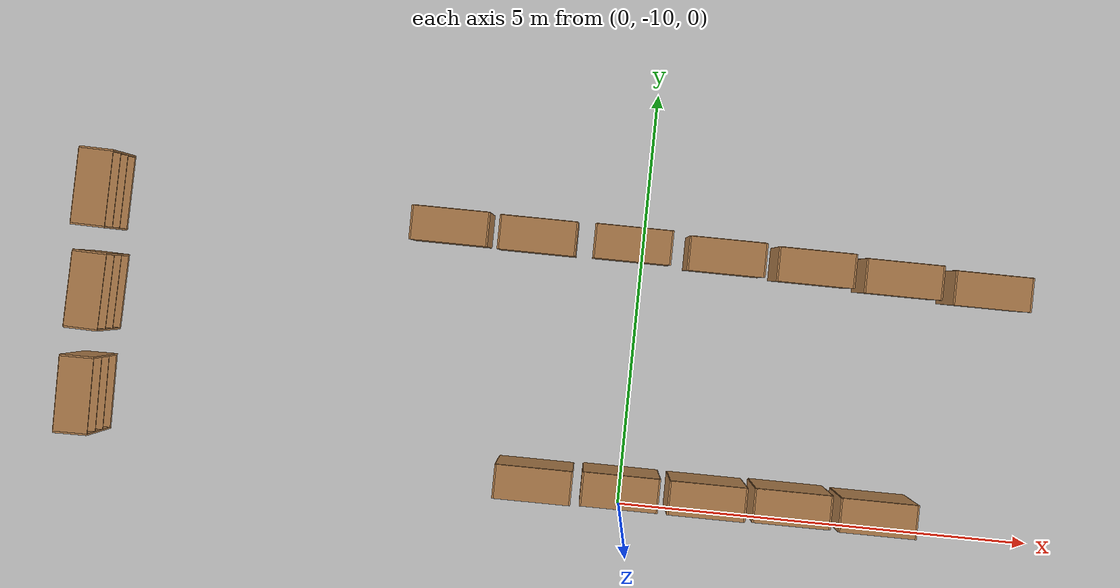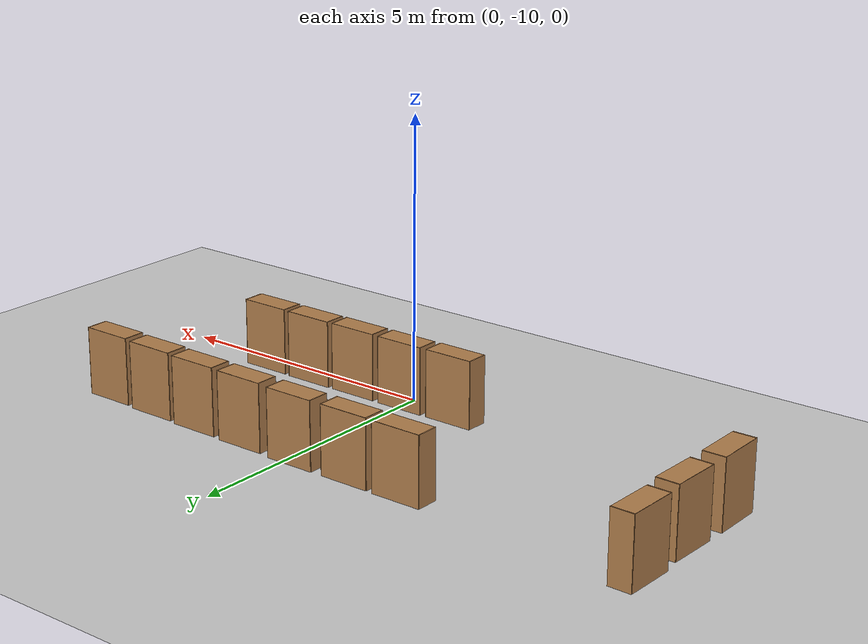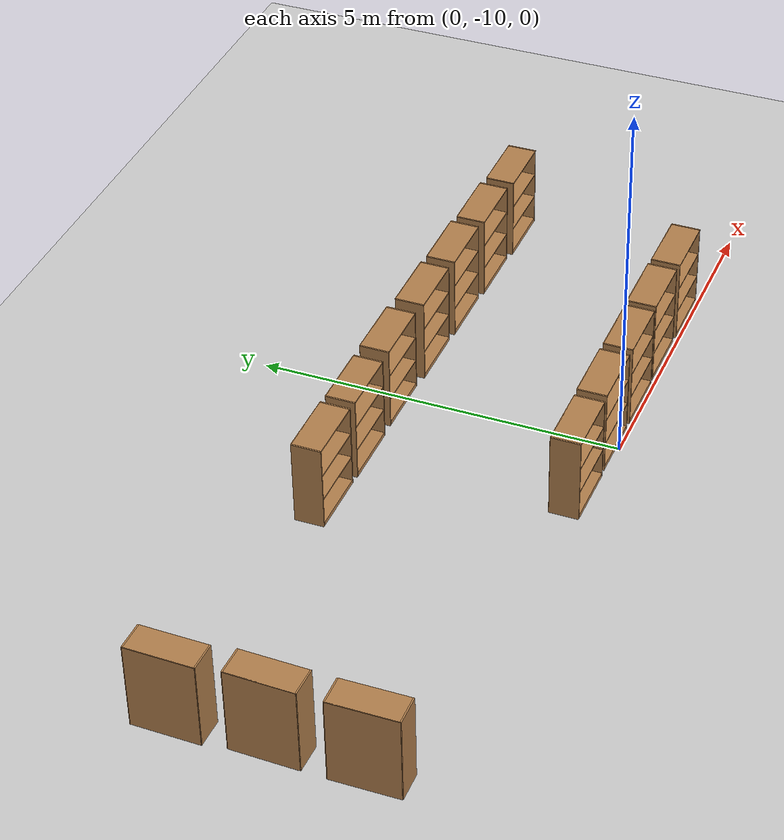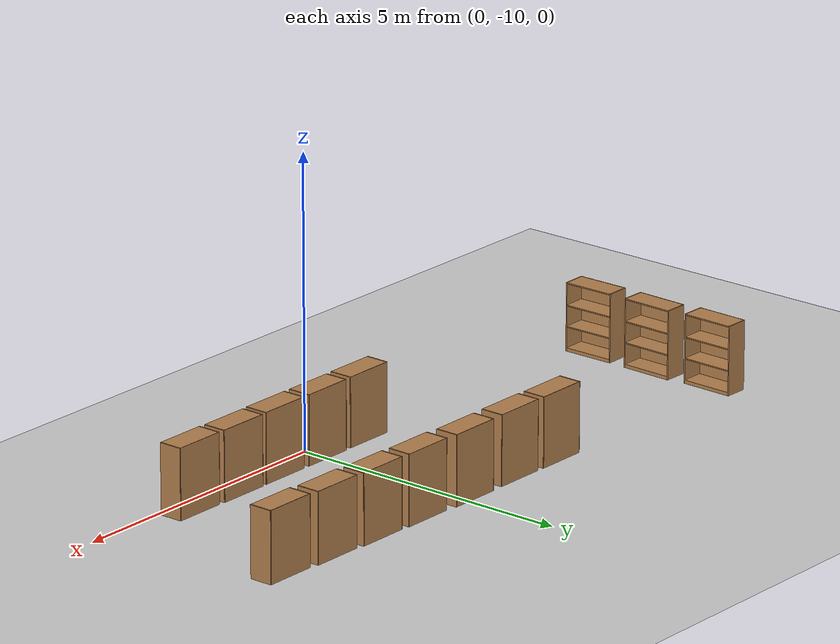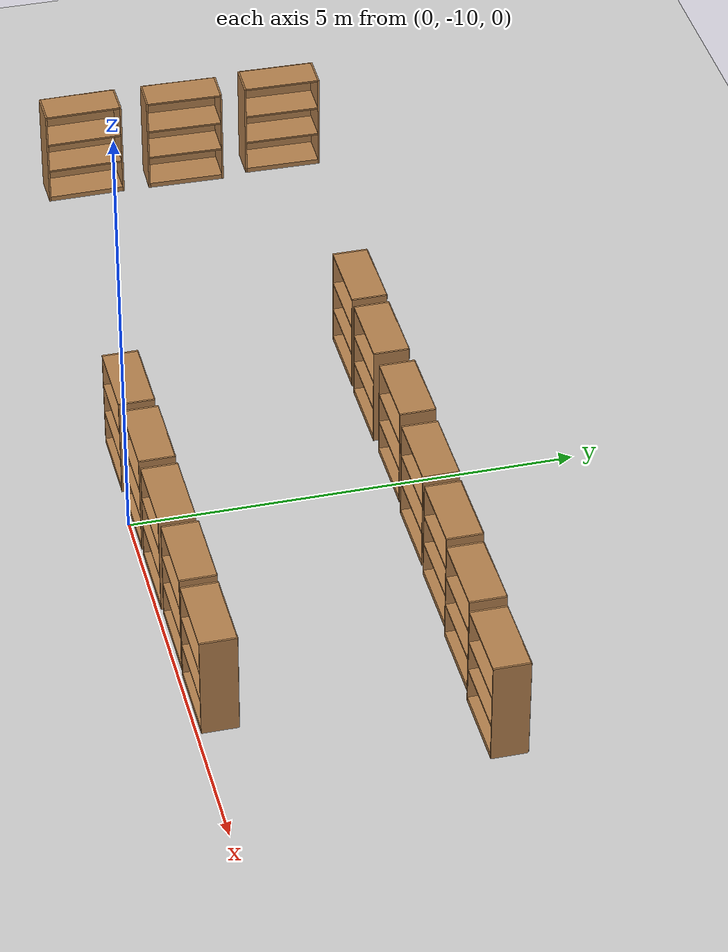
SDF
<sdf version="1.6">
 <world name="default">
  <model name="ground_plane">
   <static>1</static>
   <link name="link">
    <collision name="collision">
     <geometry><plane><normal>0 0 1</normal><size>100 100</size></plane></geometry>
     <surface>
      <contact><collide_bitmask>65535</collide_bitmask></contact>
      <friction><ode><mu>100</mu><mu2>50</mu2></ode></friction>
     </surface>
    </collision>
    <visual name="visual">
     <cast_shadows>0</cast_shadows>
     <geometry><plane><normal>0 0 1</normal><size>100 100</size></plane></geometry>
     <material>
      <script><uri>file://media/materials/scripts/gazebo.material</uri><name>Gazebo/Grey</name></script>
     </material>
    </visual>
   </link>
  </model>
  <model name="bookshelf">
   <static>1</static>
   <link name="link">
    <inertial><mass>1</mass></inertial>
    <collision name="back">
     <pose>0 0.005 0.6 0 -0 0</pose>
     <geometry><box><size>0.9 0.01 1.2</size></box></geometry>
    </collision>
    <visual name="visual1">
     <pose>0 0.005 0.6 0 -0 0</pose>
     <geometry><box><size>0.9 0.01 1.2</size></box></geometry>
     <material>
      <script><uri>file://media/materials/scripts/gazebo.material</uri><name>Gazebo/Wood</name></script>
     </material>
    </visual>
    <collision name="left_side">
     <pose>0.45 -0.195 0.6 0 -0 0</pose>
     <geometry><box><size>0.02 0.4 1.2</size></box></geometry>
    </collision>
    <visual name="visual2">
     <pose>0.45 -0.195 0.6 0 -0 0</pose>
     <geometry><box><size>0.02 0.4 1.2</size></box></geometry>
     <material>
      <script><uri>file://media/materials/scripts/gazebo.material</uri><name>Gazebo/Wood</name></script>
     </material>
    </visual>
    <collision name="right_side">
     <pose>-0.45 -0.195 0.6 0 -0 0</pose>
     <geometry><box><size>0.02 0.4 1.2</size></box></geometry>
    </collision>
    <visual name="visual3">
     <pose>-0.45 -0.195 0.6 0 -0 0</pose>
     <geometry><box><size>0.02 0.4 1.2</size></box></geometry>
     <material>
      <script><uri>file://media/materials/scripts/gazebo.material</uri><name>Gazebo/Wood</name></script>
     </material>
    </visual>
    <collision name="bottom">
     <pose>0 -0.195 0.03 0 -0 0</pose>
     <geometry><box><size>0.88 0.4 0.06</size></box></geometry>
    </collision>
    <visual name="visual4">
     <pose>0 -0.195 0.03 0 -0 0</pose>
     <geometry><box><size>0.88 0.4 0.06</size></box></geometry>
     <material>
      <script><uri>file://media/materials/scripts/gazebo.material</uri><name>Gazebo/Wood</name></script>
     </material>
    </visual>
    <collision name="top">
     <pose>0 -0.195 1.19 0 -0 0</pose>
     <geometry><box><size>0.88 0.4 0.02</size></box></geometry>
    </collision>
    <visual name="visual5">
     <pose>0 -0.195 1.19 0 -0 0</pose>
     <geometry><box><size>0.88 0.4 0.02</size></box></geometry>
     <material>
      <script><uri>file://media/materials/scripts/gazebo.material</uri><name>Gazebo/Wood</name></script>
     </material>
    </visual>
    <collision name="low_shelf">
     <pose>0 -0.195 0.43 0 -0 0</pose>
     <geometry><box><size>0.88 0.4 0.02</size></box></geometry>
    </collision>
    <visual name="visual6">
     <pose>0 -0.195 0.43 0 -0 0</pose>
     <geometry><box><size>0.88 0.4 0.02</size></box></geometry>
     <material>
      <script><uri>file://media/materials/scripts/gazebo.material</uri><name>Gazebo/Wood</name></script>
     </material>
    </visual>
    <collision name="high_shelf">
     <pose>0 -0.195 0.8 0 -0 0</pose>
     <geometry><box><size>0.88 0.4 0.02</size></box></geometry>
    </collision>
    <visual name="visual7">
     <pose>0 -0.195 0.8 0 -0 0</pose>
     <geometry><box><size>0.88 0.4 0.02</size></box></geometry>
     <material>
      <script><uri>file://media/materials/scripts/gazebo.material</uri><name>Gazebo/Wood</name></script>
     </material>
    </visual>
   </link>
   <pose>-1.04196 -9.56477 0 0 -0 0</pose>
  </model>
  <model name="bookshelf_clone">
   <static>1</static>
   <link name="link">
    <inertial><mass>1</mass></inertial>
    <collision name="back">
     <pose>0 0.005 0.6 0 -0 0</pose>
     <geometry><box><size>0.9 0.01 1.2</size></box></geometry>
    </collision>
    <visual name="visual1">
     <pose>0 0.005 0.6 0 -0 0</pose>
     <geometry><box><size>0.9 0.01 1.2</size></box></geometry>
     <material>
      <script><uri>file://media/materials/scripts/gazebo.material</uri><name>Gazebo/Wood</name></script>
     </material>
    </visual>
    <collision name="left_side">
     <pose>0.45 -0.195 0.6 0 -0 0</pose>
     <geometry><box><size>0.02 0.4 1.2</size></box></geometry>
    </collision>
    <visual name="visual2">
     <pose>0.45 -0.195 0.6 0 -0 0</pose>
     <geometry><box><size>0.02 0.4 1.2</size></box></geometry>
     <material>
      <script><uri>file://media/materials/scripts/gazebo.material</uri><name>Gazebo/Wood</name></script>
     </material>
    </visual>
    <collision name="right_side">
     <pose>-0.45 -0.195 0.6 0 -0 0</pose>
     <geometry><box><size>0.02 0.4 1.2</size></box></geometry>
    </collision>
    <visual name="visual3">
     <pose>-0.45 -0.195 0.6 0 -0 0</pose>
     <geometry><box><size>0.02 0.4 1.2</size></box></geometry>
     <material>
      <script><uri>file://media/materials/scripts/gazebo.material</uri><name>Gazebo/Wood</name></script>
     </material>
    </visual>
    <collision name="bottom">
     <pose>0 -0.195 0.03 0 -0 0</pose>
     <geometry><box><size>0.88 0.4 0.06</size></box></geometry>
    </collision>
    <visual name="visual4">
     <pose>0 -0.195 0.03 0 -0 0</pose>
     <geometry><box><size>0.88 0.4 0.06</size></box></geometry>
     <material>
      <script><uri>file://media/materials/scripts/gazebo.material</uri><name>Gazebo/Wood</name></script>
     </material>
    </visual>
    <collision name="top">
     <pose>0 -0.195 1.19 0 -0 0</pose>
     <geometry><box><size>0.88 0.4 0.02</size></box></geometry>
    </collision>
    <visual name="visual5">
     <pose>0 -0.195 1.19 0 -0 0</pose>
     <geometry><box><size>0.88 0.4 0.02</size></box></geometry>
     <material>
      <script><uri>file://media/materials/scripts/gazebo.material</uri><name>Gazebo/Wood</name></script>
     </material>
    </visual>
    <collision name="low_shelf">
     <pose>0 -0.195 0.43 0 -0 0</pose>
     <geometry><box><size>0.88 0.4 0.02</size></box></geometry>
    </collision>
    <visual name="visual6">
     <pose>0 -0.195 0.43 0 -0 0</pose>
     <geometry><box><size>0.88 0.4 0.02</size></box></geometry>
     <material>
      <script><uri>file://media/materials/scripts/gazebo.material</uri><name>Gazebo/Wood</name></script>
     </material>
    </visual>
    <collision name="high_shelf">
     <pose>0 -0.195 0.8 0 -0 0</pose>
     <geometry><box><size>0.88 0.4 0.02</size></box></geometry>
    </collision>
    <visual name="visual7">
     <pose>0 -0.195 0.8 0 -0 0</pose>
     <geometry><box><size>0.88 0.4 0.02</size></box></geometry>
     <material>
      <script><uri>file://media/materials/scripts/gazebo.material</uri><name>Gazebo/Wood</name></script>
     </material>
    </visual>
   </link>
   <pose>-0.018383 -9.55291 0 0 -0 0</pose>
  </model>
  <model name="bookshelf_clone_0">
   <static>1</static>
   <link name="link">
    <inertial><mass>1</mass></inertial>
    <collision name="back">
     <pose>0 0.005 0.6 0 -0 0</pose>
     <geometry><box><size>0.9 0.01 1.2</size></box></geometry>
    </collision>
    <visual name="visual1">
     <pose>0 0.005 0.6 0 -0 0</pose>
     <geometry><box><size>0.9 0.01 1.2</size></box></geometry>
     <material>
      <script><uri>file://media/materials/scripts/gazebo.material</uri><name>Gazebo/Wood</name></script>
     </material>
    </visual>
    <collision name="left_side">
     <pose>0.45 -0.195 0.6 0 -0 0</pose>
     <geometry><box><size>0.02 0.4 1.2</size></box></geometry>
    </collision>
    <visual name="visual2">
     <pose>0.45 -0.195 0.6 0 -0 0</pose>
     <geometry><box><size>0.02 0.4 1.2</size></box></geometry>
     <material>
      <script><uri>file://media/materials/scripts/gazebo.material</uri><name>Gazebo/Wood</name></script>
     </material>
    </visual>
    <collision name="right_side">
     <pose>-0.45 -0.195 0.6 0 -0 0</pose>
     <geometry><box><size>0.02 0.4 1.2</size></box></geometry>
    </collision>
    <visual name="visual3">
     <pose>-0.45 -0.195 0.6 0 -0 0</pose>
     <geometry><box><size>0.02 0.4 1.2</size></box></geometry>
     <material>
      <script><uri>file://media/materials/scripts/gazebo.material</uri><name>Gazebo/Wood</name></script>
     </material>
    </visual>
    <collision name="bottom">
     <pose>0 -0.195 0.03 0 -0 0</pose>
     <geometry><box><size>0.88 0.4 0.06</size></box></geometry>
    </collision>
    <visual name="visual4">
     <pose>0 -0.195 0.03 0 -0 0</pose>
     <geometry><box><size>0.88 0.4 0.06</size></box></geometry>
     <material>
      <script><uri>file://media/materials/scripts/gazebo.material</uri><name>Gazebo/Wood</name></script>
     </material>
    </visual>
    <collision name="top">
     <pose>0 -0.195 1.19 0 -0 0</pose>
     <geometry><box><size>0.88 0.4 0.02</size></box></geometry>
    </collision>
    <visual name="visual5">
     <pose>0 -0.195 1.19 0 -0 0</pose>
     <geometry><box><size>0.88 0.4 0.02</size></box></geometry>
     <material>
      <script><uri>file://media/materials/scripts/gazebo.material</uri><name>Gazebo/Wood</name></script>
     </material>
    </visual>
    <collision name="low_shelf">
     <pose>0 -0.195 0.43 0 -0 0</pose>
     <geometry><box><size>0.88 0.4 0.02</size></box></geometry>
    </collision>
    <visual name="visual6">
     <pose>0 -0.195 0.43 0 -0 0</pose>
     <geometry><box><size>0.88 0.4 0.02</size></box></geometry>
     <material>
      <script><uri>file://media/materials/scripts/gazebo.material</uri><name>Gazebo/Wood</name></script>
     </material>
    </visual>
    <collision name="high_shelf">
     <pose>0 -0.195 0.8 0 -0 0</pose>
     <geometry><box><size>0.88 0.4 0.02</size></box></geometry>
    </collision>
    <visual name="visual7">
     <pose>0 -0.195 0.8 0 -0 0</pose>
     <geometry><box><size>0.88 0.4 0.02</size></box></geometry>
     <material>
      <script><uri>file://media/materials/scripts/gazebo.material</uri><name>Gazebo/Wood</name></script>
     </material>
    </visual>
   </link>
   <pose>1.00551 -9.55613 0 0 -0 0</pose>
  </model>
  <model name="bookshelf_clone_1">
   <static>1</static>
   <link name="link">
    <inertial><mass>1</mass></inertial>
    <collision name="back">
     <pose>0 0.005 0.6 0 -0 0</pose>
     <geometry><box><size>0.9 0.01 1.2</size></box></geometry>
    </collision>
    <visual name="visual1">
     <pose>0 0.005 0.6 0 -0 0</pose>
     <geometry><box><size>0.9 0.01 1.2</size></box></geometry>
     <material>
      <script><uri>file://media/materials/scripts/gazebo.material</uri><name>Gazebo/Wood</name></script>
     </material>
    </visual>
    <collision name="left_side">
     <pose>0.45 -0.195 0.6 0 -0 0</pose>
     <geometry><box><size>0.02 0.4 1.2</size></box></geometry>
    </collision>
    <visual name="visual2">
     <pose>0.45 -0.195 0.6 0 -0 0</pose>
     <geometry><box><size>0.02 0.4 1.2</size></box></geometry>
     <material>
      <script><uri>file://media/materials/scripts/gazebo.material</uri><name>Gazebo/Wood</name></script>
     </material>
    </visual>
    <collision name="right_side">
     <pose>-0.45 -0.195 0.6 0 -0 0</pose>
     <geometry><box><size>0.02 0.4 1.2</size></box></geometry>
    </collision>
    <visual name="visual3">
     <pose>-0.45 -0.195 0.6 0 -0 0</pose>
     <geometry><box><size>0.02 0.4 1.2</size></box></geometry>
     <material>
      <script><uri>file://media/materials/scripts/gazebo.material</uri><name>Gazebo/Wood</name></script>
     </material>
    </visual>
    <collision name="bottom">
     <pose>0 -0.195 0.03 0 -0 0</pose>
     <geometry><box><size>0.88 0.4 0.06</size></box></geometry>
    </collision>
    <visual name="visual4">
     <pose>0 -0.195 0.03 0 -0 0</pose>
     <geometry><box><size>0.88 0.4 0.06</size></box></geometry>
     <material>
      <script><uri>file://media/materials/scripts/gazebo.material</uri><name>Gazebo/Wood</name></script>
     </material>
    </visual>
    <collision name="top">
     <pose>0 -0.195 1.19 0 -0 0</pose>
     <geometry><box><size>0.88 0.4 0.02</size></box></geometry>
    </collision>
    <visual name="visual5">
     <pose>0 -0.195 1.19 0 -0 0</pose>
     <geometry><box><size>0.88 0.4 0.02</size></box></geometry>
     <material>
      <script><uri>file://media/materials/scripts/gazebo.material</uri><name>Gazebo/Wood</name></script>
     </material>
    </visual>
    <collision name="low_shelf">
     <pose>0 -0.195 0.43 0 -0 0</pose>
     <geometry><box><size>0.88 0.4 0.02</size></box></geometry>
    </collision>
    <visual name="visual6">
     <pose>0 -0.195 0.43 0 -0 0</pose>
     <geometry><box><size>0.88 0.4 0.02</size></box></geometry>
     <material>
      <script><uri>file://media/materials/scripts/gazebo.material</uri><name>Gazebo/Wood</name></script>
     </material>
    </visual>
    <collision name="high_shelf">
     <pose>0 -0.195 0.8 0 -0 0</pose>
     <geometry><box><size>0.88 0.4 0.02</size></box></geometry>
    </collision>
    <visual name="visual7">
     <pose>0 -0.195 0.8 0 -0 0</pose>
     <geometry><box><size>0.88 0.4 0.02</size></box></geometry>
     <material>
      <script><uri>file://media/materials/scripts/gazebo.material</uri><name>Gazebo/Wood</name></script>
     </material>
    </visual>
   </link>
   <pose>2.0034 -9.54641 0 0 -0 0</pose>
  </model>
  <model name="bookshelf_clone_2">
   <static>1</static>
   <link name="link">
    <inertial><mass>1</mass></inertial>
    <collision name="back">
     <pose>0 0.005 0.6 0 -0 0</pose>
     <geometry><box><size>0.9 0.01 1.2</size></box></geometry>
    </collision>
    <visual name="visual1">
     <pose>0 0.005 0.6 0 -0 0</pose>
     <geometry><box><size>0.9 0.01 1.2</size></box></geometry>
     <material>
      <script><uri>file://media/materials/scripts/gazebo.material</uri><name>Gazebo/Wood</name></script>
     </material>
    </visual>
    <collision name="left_side">
     <pose>0.45 -0.195 0.6 0 -0 0</pose>
     <geometry><box><size>0.02 0.4 1.2</size></box></geometry>
    </collision>
    <visual name="visual2">
     <pose>0.45 -0.195 0.6 0 -0 0</pose>
     <geometry><box><size>0.02 0.4 1.2</size></box></geometry>
     <material>
      <script><uri>file://media/materials/scripts/gazebo.material</uri><name>Gazebo/Wood</name></script>
     </material>
    </visual>
    <collision name="right_side">
     <pose>-0.45 -0.195 0.6 0 -0 0</pose>
     <geometry><box><size>0.02 0.4 1.2</size></box></geometry>
    </collision>
    <visual name="visual3">
     <pose>-0.45 -0.195 0.6 0 -0 0</pose>
     <geometry><box><size>0.02 0.4 1.2</size></box></geometry>
     <material>
      <script><uri>file://media/materials/scripts/gazebo.material</uri><name>Gazebo/Wood</name></script>
     </material>
    </visual>
    <collision name="bottom">
     <pose>0 -0.195 0.03 0 -0 0</pose>
     <geometry><box><size>0.88 0.4 0.06</size></box></geometry>
    </collision>
    <visual name="visual4">
     <pose>0 -0.195 0.03 0 -0 0</pose>
     <geometry><box><size>0.88 0.4 0.06</size></box></geometry>
     <material>
      <script><uri>file://media/materials/scripts/gazebo.material</uri><name>Gazebo/Wood</name></script>
     </material>
    </visual>
    <collision name="top">
     <pose>0 -0.195 1.19 0 -0 0</pose>
     <geometry><box><size>0.88 0.4 0.02</size></box></geometry>
    </collision>
    <visual name="visual5">
     <pose>0 -0.195 1.19 0 -0 0</pose>
     <geometry><box><size>0.88 0.4 0.02</size></box></geometry>
     <material>
      <script><uri>file://media/materials/scripts/gazebo.material</uri><name>Gazebo/Wood</name></script>
     </material>
    </visual>
    <collision name="low_shelf">
     <pose>0 -0.195 0.43 0 -0 0</pose>
     <geometry><box><size>0.88 0.4 0.02</size></box></geometry>
    </collision>
    <visual name="visual6">
     <pose>0 -0.195 0.43 0 -0 0</pose>
     <geometry><box><size>0.88 0.4 0.02</size></box></geometry>
     <material>
      <script><uri>file://media/materials/scripts/gazebo.material</uri><name>Gazebo/Wood</name></script>
     </material>
    </visual>
    <collision name="high_shelf">
     <pose>0 -0.195 0.8 0 -0 0</pose>
     <geometry><box><size>0.88 0.4 0.02</size></box></geometry>
    </collision>
    <visual name="visual7">
     <pose>0 -0.195 0.8 0 -0 0</pose>
     <geometry><box><size>0.88 0.4 0.02</size></box></geometry>
     <material>
      <script><uri>file://media/materials/scripts/gazebo.material</uri><name>Gazebo/Wood</name></script>
     </material>
    </visual>
   </link>
   <pose>3.01253 -9.55844 0 0 -0 0</pose>
  </model>
  <model name="bookshelf_clone_4">
   <static>1</static>
   <link name="link">
    <inertial><mass>1</mass></inertial>
    <collision name="back">
     <pose>0 0.005 0.6 0 -0 0</pose>
     <geometry><box><size>0.9 0.01 1.2</size></box></geometry>
    </collision>
    <visual name="visual1">
     <pose>0 0.005 0.6 0 -0 0</pose>
     <geometry><box><size>0.9 0.01 1.2</size></box></geometry>
     <material>
      <script><uri>file://media/materials/scripts/gazebo.material</uri><name>Gazebo/Wood</name></script>
     </material>
    </visual>
    <collision name="left_side">
     <pose>0.45 -0.195 0.6 0 -0 0</pose>
     <geometry><box><size>0.02 0.4 1.2</size></box></geometry>
    </collision>
    <visual name="visual2">
     <pose>0.45 -0.195 0.6 0 -0 0</pose>
     <geometry><box><size>0.02 0.4 1.2</size></box></geometry>
     <material>
      <script><uri>file://media/materials/scripts/gazebo.material</uri><name>Gazebo/Wood</name></script>
     </material>
    </visual>
    <collision name="right_side">
     <pose>-0.45 -0.195 0.6 0 -0 0</pose>
     <geometry><box><size>0.02 0.4 1.2</size></box></geometry>
    </collision>
    <visual name="visual3">
     <pose>-0.45 -0.195 0.6 0 -0 0</pose>
     <geometry><box><size>0.02 0.4 1.2</size></box></geometry>
     <material>
      <script><uri>file://media/materials/scripts/gazebo.material</uri><name>Gazebo/Wood</name></script>
     </material>
    </visual>
    <collision name="bottom">
     <pose>0 -0.195 0.03 0 -0 0</pose>
     <geometry><box><size>0.88 0.4 0.06</size></box></geometry>
    </collision>
    <visual name="visual4">
     <pose>0 -0.195 0.03 0 -0 0</pose>
     <geometry><box><size>0.88 0.4 0.06</size></box></geometry>
     <material>
      <script><uri>file://media/materials/scripts/gazebo.material</uri><name>Gazebo/Wood</name></script>
     </material>
    </visual>
    <collision name="top">
     <pose>0 -0.195 1.19 0 -0 0</pose>
     <geometry><box><size>0.88 0.4 0.02</size></box></geometry>
    </collision>
    <visual name="visual5">
     <pose>0 -0.195 1.19 0 -0 0</pose>
     <geometry><box><size>0.88 0.4 0.02</size></box></geometry>
     <material>
      <script><uri>file://media/materials/scripts/gazebo.material</uri><name>Gazebo/Wood</name></script>
     </material>
    </visual>
    <collision name="low_shelf">
     <pose>0 -0.195 0.43 0 -0 0</pose>
     <geometry><box><size>0.88 0.4 0.02</size></box></geometry>
    </collision>
    <visual name="visual6">
     <pose>0 -0.195 0.43 0 -0 0</pose>
     <geometry><box><size>0.88 0.4 0.02</size></box></geometry>
     <material>
      <script><uri>file://media/materials/scripts/gazebo.material</uri><name>Gazebo/Wood</name></script>
     </material>
    </visual>
    <collision name="high_shelf">
     <pose>0 -0.195 0.8 0 -0 0</pose>
     <geometry><box><size>0.88 0.4 0.02</size></box></geometry>
    </collision>
    <visual name="visual7">
     <pose>0 -0.195 0.8 0 -0 0</pose>
     <geometry><box><size>0.88 0.4 0.02</size></box></geometry>
     <material>
      <script><uri>file://media/materials/scripts/gazebo.material</uri><name>Gazebo/Wood</name></script>
     </material>
    </visual>
   </link>
   <pose>-1.26677 -6.66712 0 0 -0 0</pose>
  </model>
  <model name="bookshelf_clone_5">
   <static>1</static>
   <link name="link">
    <inertial><mass>1</mass></inertial>
    <collision name="back">
     <pose>0 0.005 0.6 0 -0 0</pose>
     <geometry><box><size>0.9 0.01 1.2</size></box></geometry>
    </collision>
    <visual name="visual1">
     <pose>0 0.005 0.6 0 -0 0</pose>
     <geometry><box><size>0.9 0.01 1.2</size></box></geometry>
     <material>
      <script><uri>file://media/materials/scripts/gazebo.material</uri><name>Gazebo/Wood</name></script>
     </material>
    </visual>
    <collision name="left_side">
     <pose>0.45 -0.195 0.6 0 -0 0</pose>
     <geometry><box><size>0.02 0.4 1.2</size></box></geometry>
    </collision>
    <visual name="visual2">
     <pose>0.45 -0.195 0.6 0 -0 0</pose>
     <geometry><box><size>0.02 0.4 1.2</size></box></geometry>
     <material>
      <script><uri>file://media/materials/scripts/gazebo.material</uri><name>Gazebo/Wood</name></script>
     </material>
    </visual>
    <collision name="right_side">
     <pose>-0.45 -0.195 0.6 0 -0 0</pose>
     <geometry><box><size>0.02 0.4 1.2</size></box></geometry>
    </collision>
    <visual name="visual3">
     <pose>-0.45 -0.195 0.6 0 -0 0</pose>
     <geometry><box><size>0.02 0.4 1.2</size></box></geometry>
     <material>
      <script><uri>file://media/materials/scripts/gazebo.material</uri><name>Gazebo/Wood</name></script>
     </material>
    </visual>
    <collision name="bottom">
     <pose>0 -0.195 0.03 0 -0 0</pose>
     <geometry><box><size>0.88 0.4 0.06</size></box></geometry>
    </collision>
    <visual name="visual4">
     <pose>0 -0.195 0.03 0 -0 0</pose>
     <geometry><box><size>0.88 0.4 0.06</size></box></geometry>
     <material>
      <script><uri>file://media/materials/scripts/gazebo.material</uri><name>Gazebo/Wood</name></script>
     </material>
    </visual>
    <collision name="top">
     <pose>0 -0.195 1.19 0 -0 0</pose>
     <geometry><box><size>0.88 0.4 0.02</size></box></geometry>
    </collision>
    <visual name="visual5">
     <pose>0 -0.195 1.19 0 -0 0</pose>
     <geometry><box><size>0.88 0.4 0.02</size></box></geometry>
     <material>
      <script><uri>file://media/materials/scripts/gazebo.material</uri><name>Gazebo/Wood</name></script>
     </material>
    </visual>
    <collision name="low_shelf">
     <pose>0 -0.195 0.43 0 -0 0</pose>
     <geometry><box><size>0.88 0.4 0.02</size></box></geometry>
    </collision>
    <visual name="visual6">
     <pose>0 -0.195 0.43 0 -0 0</pose>
     <geometry><box><size>0.88 0.4 0.02</size></box></geometry>
     <material>
      <script><uri>file://media/materials/scripts/gazebo.material</uri><name>Gazebo/Wood</name></script>
     </material>
    </visual>
    <collision name="high_shelf">
     <pose>0 -0.195 0.8 0 -0 0</pose>
     <geometry><box><size>0.88 0.4 0.02</size></box></geometry>
    </collision>
    <visual name="visual7">
     <pose>0 -0.195 0.8 0 -0 0</pose>
     <geometry><box><size>0.88 0.4 0.02</size></box></geometry>
     <material>
      <script><uri>file://media/materials/scripts/gazebo.material</uri><name>Gazebo/Wood</name></script>
     </material>
    </visual>
   </link>
   <pose>-0.148558 -6.65978 0 0 -0 0</pose>
  </model>
  <model name="bookshelf_clone_6">
   <static>1</static>
   <link name="link">
    <inertial><mass>1</mass></inertial>
    <collision name="back">
     <pose>0 0.005 0.6 0 -0 0</pose>
     <geometry><box><size>0.9 0.01 1.2</size></box></geometry>
    </collision>
    <visual name="visual1">
     <pose>0 0.005 0.6 0 -0 0</pose>
     <geometry><box><size>0.9 0.01 1.2</size></box></geometry>
     <material>
      <script><uri>file://media/materials/scripts/gazebo.material</uri><name>Gazebo/Wood</name></script>
     </material>
    </visual>
    <collision name="left_side">
     <pose>0.45 -0.195 0.6 0 -0 0</pose>
     <geometry><box><size>0.02 0.4 1.2</size></box></geometry>
    </collision>
    <visual name="visual2">
     <pose>0.45 -0.195 0.6 0 -0 0</pose>
     <geometry><box><size>0.02 0.4 1.2</size></box></geometry>
     <material>
      <script><uri>file://media/materials/scripts/gazebo.material</uri><name>Gazebo/Wood</name></script>
     </material>
    </visual>
    <collision name="right_side">
     <pose>-0.45 -0.195 0.6 0 -0 0</pose>
     <geometry><box><size>0.02 0.4 1.2</size></box></geometry>
    </collision>
    <visual name="visual3">
     <pose>-0.45 -0.195 0.6 0 -0 0</pose>
     <geometry><box><size>0.02 0.4 1.2</size></box></geometry>
     <material>
      <script><uri>file://media/materials/scripts/gazebo.material</uri><name>Gazebo/Wood</name></script>
     </material>
    </visual>
    <collision name="bottom">
     <pose>0 -0.195 0.03 0 -0 0</pose>
     <geometry><box><size>0.88 0.4 0.06</size></box></geometry>
    </collision>
    <visual name="visual4">
     <pose>0 -0.195 0.03 0 -0 0</pose>
     <geometry><box><size>0.88 0.4 0.06</size></box></geometry>
     <material>
      <script><uri>file://media/materials/scripts/gazebo.material</uri><name>Gazebo/Wood</name></script>
     </material>
    </visual>
    <collision name="top">
     <pose>0 -0.195 1.19 0 -0 0</pose>
     <geometry><box><size>0.88 0.4 0.02</size></box></geometry>
    </collision>
    <visual name="visual5">
     <pose>0 -0.195 1.19 0 -0 0</pose>
     <geometry><box><size>0.88 0.4 0.02</size></box></geometry>
     <material>
      <script><uri>file://media/materials/scripts/gazebo.material</uri><name>Gazebo/Wood</name></script>
     </material>
    </visual>
    <collision name="low_shelf">
     <pose>0 -0.195 0.43 0 -0 0</pose>
     <geometry><box><size>0.88 0.4 0.02</size></box></geometry>
    </collision>
    <visual name="visual6">
     <pose>0 -0.195 0.43 0 -0 0</pose>
     <geometry><box><size>0.88 0.4 0.02</size></box></geometry>
     <material>
      <script><uri>file://media/materials/scripts/gazebo.material</uri><name>Gazebo/Wood</name></script>
     </material>
    </visual>
    <collision name="high_shelf">
     <pose>0 -0.195 0.8 0 -0 0</pose>
     <geometry><box><size>0.88 0.4 0.02</size></box></geometry>
    </collision>
    <visual name="visual7">
     <pose>0 -0.195 0.8 0 -0 0</pose>
     <geometry><box><size>0.88 0.4 0.02</size></box></geometry>
     <material>
      <script><uri>file://media/materials/scripts/gazebo.material</uri><name>Gazebo/Wood</name></script>
     </material>
    </visual>
   </link>
   <pose>0.958237 -6.69543 0 0 -0 0</pose>
  </model>
  <model name="bookshelf_clone_7">
   <static>1</static>
   <link name="link">
    <inertial><mass>1</mass></inertial>
    <collision name="back">
     <pose>0 0.005 0.6 0 -0 0</pose>
     <geometry><box><size>0.9 0.01 1.2</size></box></geometry>
    </collision>
    <visual name="visual1">
     <pose>0 0.005 0.6 0 -0 0</pose>
     <geometry><box><size>0.9 0.01 1.2</size></box></geometry>
     <material>
      <script><uri>file://media/materials/scripts/gazebo.material</uri><name>Gazebo/Wood</name></script>
     </material>
    </visual>
    <collision name="left_side">
     <pose>0.45 -0.195 0.6 0 -0 0</pose>
     <geometry><box><size>0.02 0.4 1.2</size></box></geometry>
    </collision>
    <visual name="visual2">
     <pose>0.45 -0.195 0.6 0 -0 0</pose>
     <geometry><box><size>0.02 0.4 1.2</size></box></geometry>
     <material>
      <script><uri>file://media/materials/scripts/gazebo.material</uri><name>Gazebo/Wood</name></script>
     </material>
    </visual>
    <collision name="right_side">
     <pose>-0.45 -0.195 0.6 0 -0 0</pose>
     <geometry><box><size>0.02 0.4 1.2</size></box></geometry>
    </collision>
    <visual name="visual3">
     <pose>-0.45 -0.195 0.6 0 -0 0</pose>
     <geometry><box><size>0.02 0.4 1.2</size></box></geometry>
     <material>
      <script><uri>file://media/materials/scripts/gazebo.material</uri><name>Gazebo/Wood</name></script>
     </material>
    </visual>
    <collision name="bottom">
     <pose>0 -0.195 0.03 0 -0 0</pose>
     <geometry><box><size>0.88 0.4 0.06</size></box></geometry>
    </collision>
    <visual name="visual4">
     <pose>0 -0.195 0.03 0 -0 0</pose>
     <geometry><box><size>0.88 0.4 0.06</size></box></geometry>
     <material>
      <script><uri>file://media/materials/scripts/gazebo.material</uri><name>Gazebo/Wood</name></script>
     </material>
    </visual>
    <collision name="top">
     <pose>0 -0.195 1.19 0 -0 0</pose>
     <geometry><box><size>0.88 0.4 0.02</size></box></geometry>
    </collision>
    <visual name="visual5">
     <pose>0 -0.195 1.19 0 -0 0</pose>
     <geometry><box><size>0.88 0.4 0.02</size></box></geometry>
     <material>
      <script><uri>file://media/materials/scripts/gazebo.material</uri><name>Gazebo/Wood</name></script>
     </material>
    </visual>
    <collision name="low_shelf">
     <pose>0 -0.195 0.43 0 -0 0</pose>
     <geometry><box><size>0.88 0.4 0.02</size></box></geometry>
    </collision>
    <visual name="visual6">
     <pose>0 -0.195 0.43 0 -0 0</pose>
     <geometry><box><size>0.88 0.4 0.02</size></box></geometry>
     <material>
      <script><uri>file://media/materials/scripts/gazebo.material</uri><name>Gazebo/Wood</name></script>
     </material>
    </visual>
    <collision name="high_shelf">
     <pose>0 -0.195 0.8 0 -0 0</pose>
     <geometry><box><size>0.88 0.4 0.02</size></box></geometry>
    </collision>
    <visual name="visual7">
     <pose>0 -0.195 0.8 0 -0 0</pose>
     <geometry><box><size>0.88 0.4 0.02</size></box></geometry>
     <material>
      <script><uri>file://media/materials/scripts/gazebo.material</uri><name>Gazebo/Wood</name></script>
     </material>
    </visual>
   </link>
   <pose>2.00782 -6.71921 0 0 -0 0</pose>
  </model>
  <model name="bookshelf_clone_8">
   <static>1</static>
   <link name="link">
    <inertial><mass>1</mass></inertial>
    <collision name="back">
     <pose>0 0.005 0.6 0 -0 0</pose>
     <geometry><box><size>0.9 0.01 1.2</size></box></geometry>
    </collision>
    <visual name="visual1">
     <pose>0 0.005 0.6 0 -0 0</pose>
     <geometry><box><size>0.9 0.01 1.2</size></box></geometry>
     <material>
      <script><uri>file://media/materials/scripts/gazebo.material</uri><name>Gazebo/Wood</name></script>
     </material>
    </visual>
    <collision name="left_side">
     <pose>0.45 -0.195 0.6 0 -0 0</pose>
     <geometry><box><size>0.02 0.4 1.2</size></box></geometry>
    </collision>
    <visual name="visual2">
     <pose>0.45 -0.195 0.6 0 -0 0</pose>
     <geometry><box><size>0.02 0.4 1.2</size></box></geometry>
     <material>
      <script><uri>file://media/materials/scripts/gazebo.material</uri><name>Gazebo/Wood</name></script>
     </material>
    </visual>
    <collision name="right_side">
     <pose>-0.45 -0.195 0.6 0 -0 0</pose>
     <geometry><box><size>0.02 0.4 1.2</size></box></geometry>
    </collision>
    <visual name="visual3">
     <pose>-0.45 -0.195 0.6 0 -0 0</pose>
     <geometry><box><size>0.02 0.4 1.2</size></box></geometry>
     <material>
      <script><uri>file://media/materials/scripts/gazebo.material</uri><name>Gazebo/Wood</name></script>
     </material>
    </visual>
    <collision name="bottom">
     <pose>0 -0.195 0.03 0 -0 0</pose>
     <geometry><box><size>0.88 0.4 0.06</size></box></geometry>
    </collision>
    <visual name="visual4">
     <pose>0 -0.195 0.03 0 -0 0</pose>
     <geometry><box><size>0.88 0.4 0.06</size></box></geometry>
     <material>
      <script><uri>file://media/materials/scripts/gazebo.material</uri><name>Gazebo/Wood</name></script>
     </material>
    </visual>
    <collision name="top">
     <pose>0 -0.195 1.19 0 -0 0</pose>
     <geometry><box><size>0.88 0.4 0.02</size></box></geometry>
    </collision>
    <visual name="visual5">
     <pose>0 -0.195 1.19 0 -0 0</pose>
     <geometry><box><size>0.88 0.4 0.02</size></box></geometry>
     <material>
      <script><uri>file://media/materials/scripts/gazebo.material</uri><name>Gazebo/Wood</name></script>
     </material>
    </visual>
    <collision name="low_shelf">
     <pose>0 -0.195 0.43 0 -0 0</pose>
     <geometry><box><size>0.88 0.4 0.02</size></box></geometry>
    </collision>
    <visual name="visual6">
     <pose>0 -0.195 0.43 0 -0 0</pose>
     <geometry><box><size>0.88 0.4 0.02</size></box></geometry>
     <material>
      <script><uri>file://media/materials/scripts/gazebo.material</uri><name>Gazebo/Wood</name></script>
     </material>
    </visual>
    <collision name="high_shelf">
     <pose>0 -0.195 0.8 0 -0 0</pose>
     <geometry><box><size>0.88 0.4 0.02</size></box></geometry>
    </collision>
    <visual name="visual7">
     <pose>0 -0.195 0.8 0 -0 0</pose>
     <geometry><box><size>0.88 0.4 0.02</size></box></geometry>
     <material>
      <script><uri>file://media/materials/scripts/gazebo.material</uri><name>Gazebo/Wood</name></script>
     </material>
    </visual>
   </link>
   <pose>3.03691 -6.75489 0 0 -0 0</pose>
  </model>
  <model name="bookshelf_clone_9">
   <static>1</static>
   <link name="link">
    <inertial><mass>1</mass></inertial>
    <collision name="back">
     <pose>0 0.005 0.6 0 -0 0</pose>
     <geometry><box><size>0.9 0.01 1.2</size></box></geometry>
    </collision>
    <visual name="visual1">
     <pose>0 0.005 0.6 0 -0 0</pose>
     <geometry><box><size>0.9 0.01 1.2</size></box></geometry>
     <material>
      <script><uri>file://media/materials/scripts/gazebo.material</uri><name>Gazebo/Wood</name></script>
     </material>
    </visual>
    <collision name="left_side">
     <pose>0.45 -0.195 0.6 0 -0 0</pose>
     <geometry><box><size>0.02 0.4 1.2</size></box></geometry>
    </collision>
    <visual name="visual2">
     <pose>0.45 -0.195 0.6 0 -0 0</pose>
     <geometry><box><size>0.02 0.4 1.2</size></box></geometry>
     <material>
      <script><uri>file://media/materials/scripts/gazebo.material</uri><name>Gazebo/Wood</name></script>
     </material>
    </visual>
    <collision name="right_side">
     <pose>-0.45 -0.195 0.6 0 -0 0</pose>
     <geometry><box><size>0.02 0.4 1.2</size></box></geometry>
    </collision>
    <visual name="visual3">
     <pose>-0.45 -0.195 0.6 0 -0 0</pose>
     <geometry><box><size>0.02 0.4 1.2</size></box></geometry>
     <material>
      <script><uri>file://media/materials/scripts/gazebo.material</uri><name>Gazebo/Wood</name></script>
     </material>
    </visual>
    <collision name="bottom">
     <pose>0 -0.195 0.03 0 -0 0</pose>
     <geometry><box><size>0.88 0.4 0.06</size></box></geometry>
    </collision>
    <visual name="visual4">
     <pose>0 -0.195 0.03 0 -0 0</pose>
     <geometry><box><size>0.88 0.4 0.06</size></box></geometry>
     <material>
      <script><uri>file://media/materials/scripts/gazebo.material</uri><name>Gazebo/Wood</name></script>
     </material>
    </visual>
    <collision name="top">
     <pose>0 -0.195 1.19 0 -0 0</pose>
     <geometry><box><size>0.88 0.4 0.02</size></box></geometry>
    </collision>
    <visual name="visual5">
     <pose>0 -0.195 1.19 0 -0 0</pose>
     <geometry><box><size>0.88 0.4 0.02</size></box></geometry>
     <material>
      <script><uri>file://media/materials/scripts/gazebo.material</uri><name>Gazebo/Wood</name></script>
     </material>
    </visual>
    <collision name="low_shelf">
     <pose>0 -0.195 0.43 0 -0 0</pose>
     <geometry><box><size>0.88 0.4 0.02</size></box></geometry>
    </collision>
    <visual name="visual6">
     <pose>0 -0.195 0.43 0 -0 0</pose>
     <geometry><box><size>0.88 0.4 0.02</size></box></geometry>
     <material>
      <script><uri>file://media/materials/scripts/gazebo.material</uri><name>Gazebo/Wood</name></script>
     </material>
    </visual>
    <collision name="high_shelf">
     <pose>0 -0.195 0.8 0 -0 0</pose>
     <geometry><box><size>0.88 0.4 0.02</size></box></geometry>
    </collision>
    <visual name="visual7">
     <pose>0 -0.195 0.8 0 -0 0</pose>
     <geometry><box><size>0.88 0.4 0.02</size></box></geometry>
     <material>
      <script><uri>file://media/materials/scripts/gazebo.material</uri><name>Gazebo/Wood</name></script>
     </material>
    </visual>
   </link>
   <pose>4.08308 -6.794 0 0 -0 0</pose>
  </model>
  <model name="bookshelf_clone_10">
   <static>1</static>
   <link name="link">
    <inertial><mass>1</mass></inertial>
    <collision name="back">
     <pose>0 0.005 0.6 0 -0 0</pose>
     <geometry><box><size>0.9 0.01 1.2</size></box></geometry>
    </collision>
    <visual name="visual1">
     <pose>0 0.005 0.6 0 -0 0</pose>
     <geometry><box><size>0.9 0.01 1.2</size></box></geometry>
     <material>
      <script><uri>file://media/materials/scripts/gazebo.material</uri><name>Gazebo/Wood</name></script>
     </material>
    </visual>
    <collision name="left_side">
     <pose>0.45 -0.195 0.6 0 -0 0</pose>
     <geometry><box><size>0.02 0.4 1.2</size></box></geometry>
    </collision>
    <visual name="visual2">
     <pose>0.45 -0.195 0.6 0 -0 0</pose>
     <geometry><box><size>0.02 0.4 1.2</size></box></geometry>
     <material>
      <script><uri>file://media/materials/scripts/gazebo.material</uri><name>Gazebo/Wood</name></script>
     </material>
    </visual>
    <collision name="right_side">
     <pose>-0.45 -0.195 0.6 0 -0 0</pose>
     <geometry><box><size>0.02 0.4 1.2</size></box></geometry>
    </collision>
    <visual name="visual3">
     <pose>-0.45 -0.195 0.6 0 -0 0</pose>
     <geometry><box><size>0.02 0.4 1.2</size></box></geometry>
     <material>
      <script><uri>file://media/materials/scripts/gazebo.material</uri><name>Gazebo/Wood</name></script>
     </material>
    </visual>
    <collision name="bottom">
     <pose>0 -0.195 0.03 0 -0 0</pose>
     <geometry><box><size>0.88 0.4 0.06</size></box></geometry>
    </collision>
    <visual name="visual4">
     <pose>0 -0.195 0.03 0 -0 0</pose>
     <geometry><box><size>0.88 0.4 0.06</size></box></geometry>
     <material>
      <script><uri>file://media/materials/scripts/gazebo.material</uri><name>Gazebo/Wood</name></script>
     </material>
    </visual>
    <collision name="top">
     <pose>0 -0.195 1.19 0 -0 0</pose>
     <geometry><box><size>0.88 0.4 0.02</size></box></geometry>
    </collision>
    <visual name="visual5">
     <pose>0 -0.195 1.19 0 -0 0</pose>
     <geometry><box><size>0.88 0.4 0.02</size></box></geometry>
     <material>
      <script><uri>file://media/materials/scripts/gazebo.material</uri><name>Gazebo/Wood</name></script>
     </material>
    </visual>
    <collision name="low_shelf">
     <pose>0 -0.195 0.43 0 -0 0</pose>
     <geometry><box><size>0.88 0.4 0.02</size></box></geometry>
    </collision>
    <visual name="visual6">
     <pose>0 -0.195 0.43 0 -0 0</pose>
     <geometry><box><size>0.88 0.4 0.02</size></box></geometry>
     <material>
      <script><uri>file://media/materials/scripts/gazebo.material</uri><name>Gazebo/Wood</name></script>
     </material>
    </visual>
    <collision name="high_shelf">
     <pose>0 -0.195 0.8 0 -0 0</pose>
     <geometry><box><size>0.88 0.4 0.02</size></box></geometry>
    </collision>
    <visual name="visual7">
     <pose>0 -0.195 0.8 0 -0 0</pose>
     <geometry><box><size>0.88 0.4 0.02</size></box></geometry>
     <material>
      <script><uri>file://media/materials/scripts/gazebo.material</uri><name>Gazebo/Wood</name></script>
     </material>
    </visual>
   </link>
   <pose>-2.30032 -6.65567 0 0 -0 0</pose>
  </model>
  <model name="bookshelf_clone_17_clone_7_clone_6">
   <static>1</static>
   <link name="link">
    <inertial><mass>1</mass></inertial>
    <collision name="back">
     <pose>0 0.005 0.6 0 -0 0</pose>
     <geometry><box><size>0.9 0.01 1.2</size></box></geometry>
    </collision>
    <visual name="visual1">
     <pose>0 0.005 0.6 0 -0 0</pose>
     <geometry><box><size>0.9 0.01 1.2</size></box></geometry>
     <material>
      <script><uri>file://media/materials/scripts/gazebo.material</uri><name>Gazebo/Wood</name></script>
     </material>
    </visual>
    <collision name="left_side">
     <pose>0.45 -0.195 0.6 0 -0 0</pose>
     <geometry><box><size>0.02 0.4 1.2</size></box></geometry>
    </collision>
    <visual name="visual2">
     <pose>0.45 -0.195 0.6 0 -0 0</pose>
     <geometry><box><size>0.02 0.4 1.2</size></box></geometry>
     <material>
      <script><uri>file://media/materials/scripts/gazebo.material</uri><name>Gazebo/Wood</name></script>
     </material>
    </visual>
    <collision name="right_side">
     <pose>-0.45 -0.195 0.6 0 -0 0</pose>
     <geometry><box><size>0.02 0.4 1.2</size></box></geometry>
    </collision>
    <visual name="visual3">
     <pose>-0.45 -0.195 0.6 0 -0 0</pose>
     <geometry><box><size>0.02 0.4 1.2</size></box></geometry>
     <material>
      <script><uri>file://media/materials/scripts/gazebo.material</uri><name>Gazebo/Wood</name></script>
     </material>
    </visual>
    <collision name="bottom">
     <pose>0 -0.195 0.03 0 -0 0</pose>
     <geometry><box><size>0.88 0.4 0.06</size></box></geometry>
    </collision>
    <visual name="visual4">
     <pose>0 -0.195 0.03 0 -0 0</pose>
     <geometry><box><size>0.88 0.4 0.06</size></box></geometry>
     <material>
      <script><uri>file://media/materials/scripts/gazebo.material</uri><name>Gazebo/Wood</name></script>
     </material>
    </visual>
    <collision name="top">
     <pose>0 -0.195 1.19 0 -0 0</pose>
     <geometry><box><size>0.88 0.4 0.02</size></box></geometry>
    </collision>
    <visual name="visual5">
     <pose>0 -0.195 1.19 0 -0 0</pose>
     <geometry><box><size>0.88 0.4 0.02</size></box></geometry>
     <material>
      <script><uri>file://media/materials/scripts/gazebo.material</uri><name>Gazebo/Wood</name></script>
     </material>
    </visual>
    <collision name="low_shelf">
     <pose>0 -0.195 0.43 0 -0 0</pose>
     <geometry><box><size>0.88 0.4 0.02</size></box></geometry>
    </collision>
    <visual name="visual6">
     <pose>0 -0.195 0.43 0 -0 0</pose>
     <geometry><box><size>0.88 0.4 0.02</size></box></geometry>
     <material>
      <script><uri>file://media/materials/scripts/gazebo.material</uri><name>Gazebo/Wood</name></script>
     </material>
    </visual>
    <collision name="high_shelf">
     <pose>0 -0.195 0.8 0 -0 0</pose>
     <geometry><box><size>0.88 0.4 0.02</size></box></geometry>
    </collision>
    <visual name="visual7">
     <pose>0 -0.195 0.8 0 -0 0</pose>
     <geometry><box><size>0.88 0.4 0.02</size></box></geometry>
     <material>
      <script><uri>file://media/materials/scripts/gazebo.material</uri><name>Gazebo/Wood</name></script>
     </material>
    </visual>
   </link>
   <pose>-6.68602 -6.80822 0 0 -0 1.55307</pose>
  </model>
  <model name="bookshelf_clone_17_clone_7_clone_7">
   <static>1</static>
   <link name="link">
    <inertial><mass>1</mass></inertial>
    <collision name="back">
     <pose>0 0.005 0.6 0 -0 0</pose>
     <geometry><box><size>0.9 0.01 1.2</size></box></geometry>
    </collision>
    <visual name="visual1">
     <pose>0 0.005 0.6 0 -0 0</pose>
     <geometry><box><size>0.9 0.01 1.2</size></box></geometry>
     <material>
      <script><uri>file://media/materials/scripts/gazebo.material</uri><name>Gazebo/Wood</name></script>
     </material>
    </visual>
    <collision name="left_side">
     <pose>0.45 -0.195 0.6 0 -0 0</pose>
     <geometry><box><size>0.02 0.4 1.2</size></box></geometry>
    </collision>
    <visual name="visual2">
     <pose>0.45 -0.195 0.6 0 -0 0</pose>
     <geometry><box><size>0.02 0.4 1.2</size></box></geometry>
     <material>
      <script><uri>file://media/materials/scripts/gazebo.material</uri><name>Gazebo/Wood</name></script>
     </material>
    </visual>
    <collision name="right_side">
     <pose>-0.45 -0.195 0.6 0 -0 0</pose>
     <geometry><box><size>0.02 0.4 1.2</size></box></geometry>
    </collision>
    <visual name="visual3">
     <pose>-0.45 -0.195 0.6 0 -0 0</pose>
     <geometry><box><size>0.02 0.4 1.2</size></box></geometry>
     <material>
      <script><uri>file://media/materials/scripts/gazebo.material</uri><name>Gazebo/Wood</name></script>
     </material>
    </visual>
    <collision name="bottom">
     <pose>0 -0.195 0.03 0 -0 0</pose>
     <geometry><box><size>0.88 0.4 0.06</size></box></geometry>
    </collision>
    <visual name="visual4">
     <pose>0 -0.195 0.03 0 -0 0</pose>
     <geometry><box><size>0.88 0.4 0.06</size></box></geometry>
     <material>
      <script><uri>file://media/materials/scripts/gazebo.material</uri><name>Gazebo/Wood</name></script>
     </material>
    </visual>
    <collision name="top">
     <pose>0 -0.195 1.19 0 -0 0</pose>
     <geometry><box><size>0.88 0.4 0.02</size></box></geometry>
    </collision>
    <visual name="visual5">
     <pose>0 -0.195 1.19 0 -0 0</pose>
     <geometry><box><size>0.88 0.4 0.02</size></box></geometry>
     <material>
      <script><uri>file://media/materials/scripts/gazebo.material</uri><name>Gazebo/Wood</name></script>
     </material>
    </visual>
    <collision name="low_shelf">
     <pose>0 -0.195 0.43 0 -0 0</pose>
     <geometry><box><size>0.88 0.4 0.02</size></box></geometry>
    </collision>
    <visual name="visual6">
     <pose>0 -0.195 0.43 0 -0 0</pose>
     <geometry><box><size>0.88 0.4 0.02</size></box></geometry>
     <material>
      <script><uri>file://media/materials/scripts/gazebo.material</uri><name>Gazebo/Wood</name></script>
     </material>
    </visual>
    <collision name="high_shelf">
     <pose>0 -0.195 0.8 0 -0 0</pose>
     <geometry><box><size>0.88 0.4 0.02</size></box></geometry>
    </collision>
    <visual name="visual7">
     <pose>0 -0.195 0.8 0 -0 0</pose>
     <geometry><box><size>0.88 0.4 0.02</size></box></geometry>
     <material>
      <script><uri>file://media/materials/scripts/gazebo.material</uri><name>Gazebo/Wood</name></script>
     </material>
    </visual>
   </link>
   <pose>-6.64767 -8.01276 0 0 -0 1.54741</pose>
  </model>
  <model name="bookshelf_clone_17_clone_7_clone_8">
   <static>1</static>
   <link name="link">
    <inertial><mass>1</mass></inertial>
    <collision name="back">
     <pose>0 0.005 0.6 0 -0 0</pose>
     <geometry><box><size>0.9 0.01 1.2</size></box></geometry>
    </collision>
    <visual name="visual1">
     <pose>0 0.005 0.6 0 -0 0</pose>
     <geometry><box><size>0.9 0.01 1.2</size></box></geometry>
     <material>
      <script><uri>file://media/materials/scripts/gazebo.material</uri><name>Gazebo/Wood</name></script>
     </material>
    </visual>
    <collision name="left_side">
     <pose>0.45 -0.195 0.6 0 -0 0</pose>
     <geometry><box><size>0.02 0.4 1.2</size></box></geometry>
    </collision>
    <visual name="visual2">
     <pose>0.45 -0.195 0.6 0 -0 0</pose>
     <geometry><box><size>0.02 0.4 1.2</size></box></geometry>
     <material>
      <script><uri>file://media/materials/scripts/gazebo.material</uri><name>Gazebo/Wood</name></script>
     </material>
    </visual>
    <collision name="right_side">
     <pose>-0.45 -0.195 0.6 0 -0 0</pose>
     <geometry><box><size>0.02 0.4 1.2</size></box></geometry>
    </collision>
    <visual name="visual3">
     <pose>-0.45 -0.195 0.6 0 -0 0</pose>
     <geometry><box><size>0.02 0.4 1.2</size></box></geometry>
     <material>
      <script><uri>file://media/materials/scripts/gazebo.material</uri><name>Gazebo/Wood</name></script>
     </material>
    </visual>
    <collision name="bottom">
     <pose>0 -0.195 0.03 0 -0 0</pose>
     <geometry><box><size>0.88 0.4 0.06</size></box></geometry>
    </collision>
    <visual name="visual4">
     <pose>0 -0.195 0.03 0 -0 0</pose>
     <geometry><box><size>0.88 0.4 0.06</size></box></geometry>
     <material>
      <script><uri>file://media/materials/scripts/gazebo.material</uri><name>Gazebo/Wood</name></script>
     </material>
    </visual>
    <collision name="top">
     <pose>0 -0.195 1.19 0 -0 0</pose>
     <geometry><box><size>0.88 0.4 0.02</size></box></geometry>
    </collision>
    <visual name="visual5">
     <pose>0 -0.195 1.19 0 -0 0</pose>
     <geometry><box><size>0.88 0.4 0.02</size></box></geometry>
     <material>
      <script><uri>file://media/materials/scripts/gazebo.material</uri><name>Gazebo/Wood</name></script>
     </material>
    </visual>
    <collision name="low_shelf">
     <pose>0 -0.195 0.43 0 -0 0</pose>
     <geometry><box><size>0.88 0.4 0.02</size></box></geometry>
    </collision>
    <visual name="visual6">
     <pose>0 -0.195 0.43 0 -0 0</pose>
     <geometry><box><size>0.88 0.4 0.02</size></box></geometry>
     <material>
      <script><uri>file://media/materials/scripts/gazebo.material</uri><name>Gazebo/Wood</name></script>
     </material>
    </visual>
    <collision name="high_shelf">
     <pose>0 -0.195 0.8 0 -0 0</pose>
     <geometry><box><size>0.88 0.4 0.02</size></box></geometry>
    </collision>
    <visual name="visual7">
     <pose>0 -0.195 0.8 0 -0 0</pose>
     <geometry><box><size>0.88 0.4 0.02</size></box></geometry>
     <material>
      <script><uri>file://media/materials/scripts/gazebo.material</uri><name>Gazebo/Wood</name></script>
     </material>
    </visual>
   </link>
   <pose>-6.66155 -9.24551 0 0 -0 1.58085</pose>
  </model>
 </world>
</sdf>
